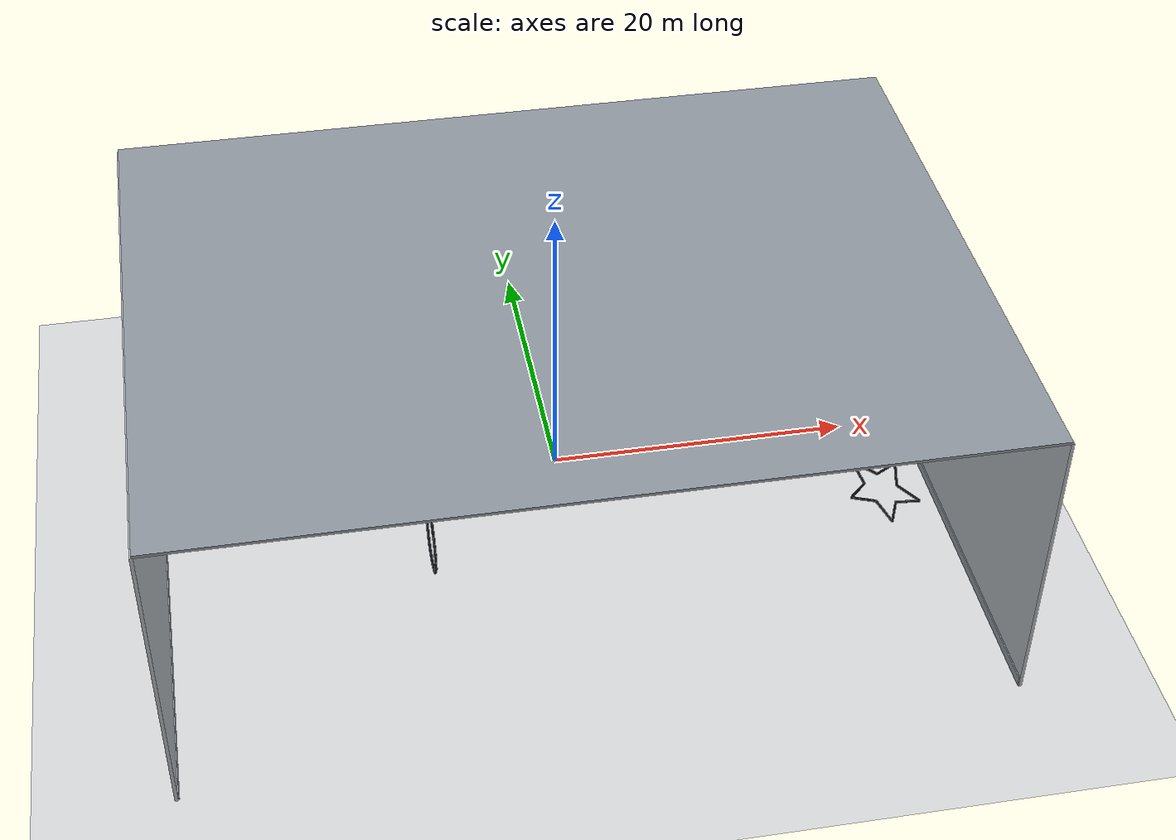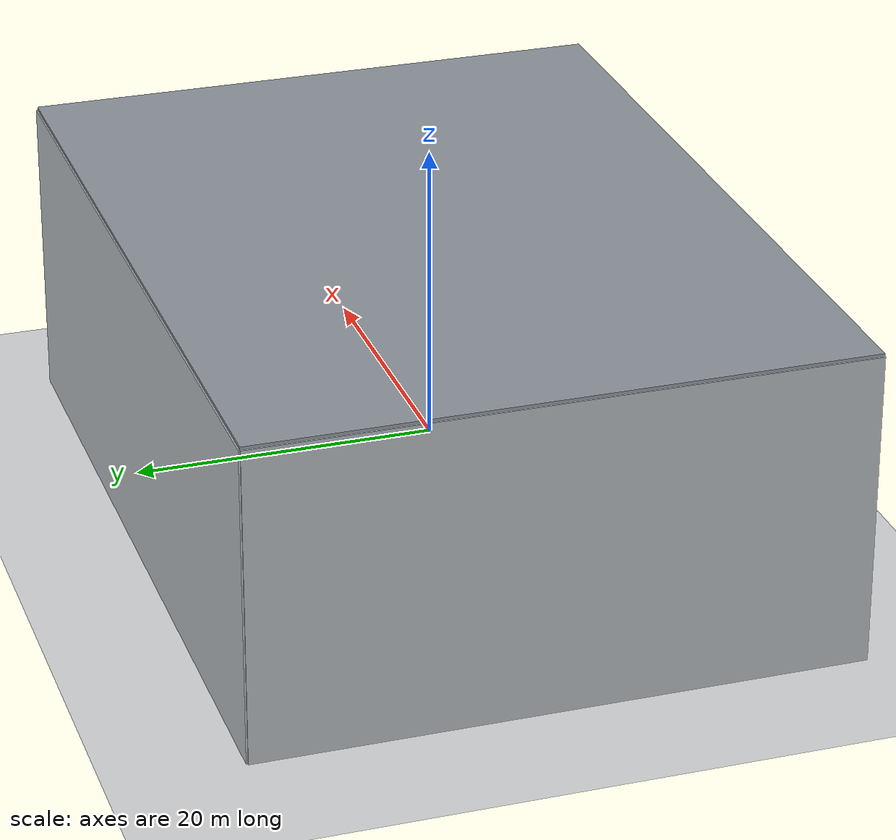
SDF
<?xml version="1.0" ?>
<sdf version="1.9"><world name="seven_unique_px4_manual">
  <physics name="px4_manual_four_millisecond" type="dart"><max_step_size>0.004</max_step_size><real_time_factor>1</real_time_factor></physics>
  <gravity>0 0 -9.8</gravity>
  <magnetic_field>6e-06 2.3e-05 -4.2e-05</magnetic_field>
  <atmosphere type="adiabatic"/>
  <spherical_coordinates>
    <surface_model>EARTH_WGS84</surface_model>
    <world_frame_orientation>ENU</world_frame_orientation>
    <latitude_deg>47.397971057728974</latitude_deg>
    <longitude_deg>8.546163739800146</longitude_deg>
    <elevation>0</elevation>
    <heading_deg>0</heading_deg>
  </spherical_coordinates>

  <scene><ambient>0.64 0.66 0.68 1</ambient><background>0.73 0.75 0.77 1</background><shadows>false</shadows><grid>false</grid></scene>

  <model name="ground"><static>true</static><pose>0 0 -6 0 0 0</pose><link name="ground_link">
    <collision name="ground_collision"><geometry><plane><normal>0 0 1</normal><size>100 100</size></plane></geometry></collision>
    <visual name="ground_visual"><geometry><plane><normal>0 0 1</normal><size>100 100</size></plane></geometry>
      <material><ambient>0.72 0.74 0.76 1</ambient><diffuse>0.84 0.85 0.86 1</diffuse><specular>0.08 0.08 0.08 1</specular>
        <pbr><metal><albedo_map>materials/textures/indoor_lab_floor.png</albedo_map><roughness>0.92</roughness><metalness>0.02</metalness></metal></pbr></material>
    </visual></link></model>

  <model name="lab_back_wall"><static>true</static><pose>0 20 4.5 0 0 0</pose><link name="visual_only">
      <visual name="visual"><geometry><box><size>54 0.22 21</size></box></geometry>
        <material><ambient>0.700 0.720 0.740 1.000</ambient><diffuse>0.700 0.720 0.740 1.000</diffuse><emissive>0.000 0.000 0.000 1.000</emissive></material>
      </visual></link></model>
<model name="lab_left_wall"><static>true</static><pose>-27 0 4.5 0 0 0</pose><link name="visual_only">
      <visual name="visual"><geometry><box><size>0.22 40 21</size></box></geometry>
        <material><ambient>0.700 0.720 0.740 1.000</ambient><diffuse>0.700 0.720 0.740 1.000</diffuse><emissive>0.000 0.000 0.000 1.000</emissive></material>
      </visual></link></model>
<model name="lab_right_wall"><static>true</static><pose>27 0 4.5 0 0 0</pose><link name="visual_only">
      <visual name="visual"><geometry><box><size>0.22 40 21</size></box></geometry>
        <material><ambient>0.700 0.720 0.740 1.000</ambient><diffuse>0.700 0.720 0.740 1.000</diffuse><emissive>0.000 0.000 0.000 1.000</emissive></material>
      </visual></link></model>
<model name="lab_ceiling"><static>true</static><pose>0 0 15.1 0 0 0</pose><link name="visual_only">
      <visual name="visual"><geometry><box><size>54 40 0.2</size></box></geometry>
        <material><ambient>0.560 0.590 0.620 1.000</ambient><diffuse>0.560 0.590 0.620 1.000</diffuse><emissive>0.000 0.000 0.000 1.000</emissive></material>
      </visual></link></model>
<model name="lab_back_skirt"><static>true</static><pose>0 19.84 -5.55 0 0 0</pose><link name="visual_only">
      <visual name="visual"><geometry><box><size>54 0.08 0.7</size></box></geometry>
        <material><ambient>0.560 0.590 0.620 1.000</ambient><diffuse>0.560 0.590 0.620 1.000</diffuse><emissive>0.000 0.000 0.000 1.000</emissive></material>
      </visual></link></model>
<model name="lab_left_skirt"><static>true</static><pose>-26.84 0 -5.55 0 0 0</pose><link name="visual_only">
      <visual name="visual"><geometry><box><size>0.08 40 0.7</size></box></geometry>
        <material><ambient>0.560 0.590 0.620 1.000</ambient><diffuse>0.560 0.590 0.620 1.000</diffuse><emissive>0.000 0.000 0.000 1.000</emissive></material>
      </visual></link></model>
<model name="lab_right_skirt"><static>true</static><pose>26.84 0 -5.55 0 0 0</pose><link name="visual_only">
      <visual name="visual"><geometry><box><size>0.08 40 0.7</size></box></geometry>
        <material><ambient>0.560 0.590 0.620 1.000</ambient><diffuse>0.560 0.590 0.620 1.000</diffuse><emissive>0.000 0.000 0.000 1.000</emissive></material>
      </visual></link></model>
<model name="ceiling_panel_0_0"><static>true</static><pose>-18 -10 14.96 0 0 0</pose><link name="visual_only">
      <visual name="visual"><geometry><box><size>5.6 1 0.025</size></box></geometry>
        <material><ambient>0.980 0.980 0.960 1.000</ambient><diffuse>0.980 0.980 0.960 1.000</diffuse><emissive>0.980 0.980 0.960 1.000</emissive></material>
      </visual></link></model>
<model name="ceiling_panel_0_1"><static>true</static><pose>-6 -10 14.96 0 0 0</pose><link name="visual_only">
      <visual name="visual"><geometry><box><size>5.6 1 0.025</size></box></geometry>
        <material><ambient>0.980 0.980 0.960 1.000</ambient><diffuse>0.980 0.980 0.960 1.000</diffuse><emissive>0.980 0.980 0.960 1.000</emissive></material>
      </visual></link></model>
<model name="ceiling_panel_0_2"><static>true</static><pose>6 -10 14.96 0 0 0</pose><link name="visual_only">
      <visual name="visual"><geometry><box><size>5.6 1 0.025</size></box></geometry>
        <material><ambient>0.980 0.980 0.960 1.000</ambient><diffuse>0.980 0.980 0.960 1.000</diffuse><emissive>0.980 0.980 0.960 1.000</emissive></material>
      </visual></link></model>
<model name="ceiling_panel_0_3"><static>true</static><pose>18 -10 14.96 0 0 0</pose><link name="visual_only">
      <visual name="visual"><geometry><box><size>5.6 1 0.025</size></box></geometry>
        <material><ambient>0.980 0.980 0.960 1.000</ambient><diffuse>0.980 0.980 0.960 1.000</diffuse><emissive>0.980 0.980 0.960 1.000</emissive></material>
      </visual></link></model>
<model name="ceiling_panel_1_0"><static>true</static><pose>-18 0 14.96 0 0 0</pose><link name="visual_only">
      <visual name="visual"><geometry><box><size>5.6 1 0.025</size></box></geometry>
        <material><ambient>0.980 0.980 0.960 1.000</ambient><diffuse>0.980 0.980 0.960 1.000</diffuse><emissive>0.980 0.980 0.960 1.000</emissive></material>
      </visual></link></model>
<model name="ceiling_panel_1_1"><static>true</static><pose>-6 0 14.96 0 0 0</pose><link name="visual_only">
      <visual name="visual"><geometry><box><size>5.6 1 0.025</size></box></geometry>
        <material><ambient>0.980 0.980 0.960 1.000</ambient><diffuse>0.980 0.980 0.960 1.000</diffuse><emissive>0.980 0.980 0.960 1.000</emissive></material>
      </visual></link></model>
<model name="ceiling_panel_1_2"><static>true</static><pose>6 0 14.96 0 0 0</pose><link name="visual_only">
      <visual name="visual"><geometry><box><size>5.6 1 0.025</size></box></geometry>
        <material><ambient>0.980 0.980 0.960 1.000</ambient><diffuse>0.980 0.980 0.960 1.000</diffuse><emissive>0.980 0.980 0.960 1.000</emissive></material>
      </visual></link></model>
<model name="ceiling_panel_1_3"><static>true</static><pose>18 0 14.96 0 0 0</pose><link name="visual_only">
      <visual name="visual"><geometry><box><size>5.6 1 0.025</size></box></geometry>
        <material><ambient>0.980 0.980 0.960 1.000</ambient><diffuse>0.980 0.980 0.960 1.000</diffuse><emissive>0.980 0.980 0.960 1.000</emissive></material>
      </visual></link></model>
<model name="ceiling_panel_2_0"><static>true</static><pose>-18 10 14.96 0 0 0</pose><link name="visual_only">
      <visual name="visual"><geometry><box><size>5.6 1 0.025</size></box></geometry>
        <material><ambient>0.980 0.980 0.960 1.000</ambient><diffuse>0.980 0.980 0.960 1.000</diffuse><emissive>0.980 0.980 0.960 1.000</emissive></material>
      </visual></link></model>
<model name="ceiling_panel_2_1"><static>true</static><pose>-6 10 14.96 0 0 0</pose><link name="visual_only">
      <visual name="visual"><geometry><box><size>5.6 1 0.025</size></box></geometry>
        <material><ambient>0.980 0.980 0.960 1.000</ambient><diffuse>0.980 0.980 0.960 1.000</diffuse><emissive>0.980 0.980 0.960 1.000</emissive></material>
      </visual></link></model>
<model name="ceiling_panel_2_2"><static>true</static><pose>6 10 14.96 0 0 0</pose><link name="visual_only">
      <visual name="visual"><geometry><box><size>5.6 1 0.025</size></box></geometry>
        <material><ambient>0.980 0.980 0.960 1.000</ambient><diffuse>0.980 0.980 0.960 1.000</diffuse><emissive>0.980 0.980 0.960 1.000</emissive></material>
      </visual></link></model>
<model name="ceiling_panel_2_3"><static>true</static><pose>18 10 14.96 0 0 0</pose><link name="visual_only">
      <visual name="visual"><geometry><box><size>5.6 1 0.025</size></box></geometry>
        <material><ambient>0.980 0.980 0.960 1.000</ambient><diffuse>0.980 0.980 0.960 1.000</diffuse><emissive>0.980 0.980 0.960 1.000</emissive></material>
      </visual></link></model>
  <model name="gate_01_W1_L">
      <pose>-2.42 -3.52 6.48 0 -1.57079632679 0</pose>
      <self_collide>false</self_collide>
      <link name="base">
        <gravity>false</gravity>
        <inertial><mass>1</mass><inertia><ixx>1</ixx><iyy>1</iyy><izz>1</izz></inertia></inertial>
      </link>
      <link name="frame"><pose relative_to="base">0 0 0 0 0 0.4</pose><gravity>false</gravity>
        <inertial><mass>8</mass><inertia><ixx>40</ixx><iyy>40</iyy><izz>40</izz></inertia></inertial>
        <collision name="frame_collision"><geometry><mesh><uri>meshes/gate_01_L_sleeve.stl</uri></mesh></geometry>
          <surface><contact><collide_bitmask>0xffff</collide_bitmask></contact>
          <friction><ode><mu>0.8</mu><mu2>0.8</mu2></ode></friction>
          <bounce><restitution_coefficient>.16</restitution_coefficient><threshold>.05</threshold></bounce></surface>
        </collision>
        <visual name="foam_sleeve"><geometry><mesh><uri>meshes/gate_01_L_sleeve.stl</uri></mesh></geometry>
          <material><ambient>0.025 0.030 0.040 1</ambient><diffuse>0.055 0.065 0.085 1</diffuse>
          <specular>0.14 0.14 0.16 1</specular></material>
        </visual>
        <visual name="led_inner_edge"><geometry><mesh><uri>meshes/gate_01_L_visual_core.stl</uri></mesh></geometry>
          <material><ambient>0.780 0.830 0.900 1.000</ambient><diffuse>0.780 0.830 0.900 1.000</diffuse>
          <specular>0.75 0.75 0.75 1</specular><emissive>0.780 0.830 0.900 1.000</emissive></material>
        </visual>
      </link>
      <joint name="world_fixed" type="fixed"><parent>world</parent><child>base</child></joint>
      <joint name="spin" type="revolute"><parent>base</parent><child>frame</child>
        <axis><xyz>0 0 1</xyz><limit><lower>-1e16</lower><upper>1e16</upper>
        <velocity>100</velocity><effort>1e9</effort></limit><dynamics><damping>0</damping></dynamics></axis>
      </joint>
      <plugin filename="gz-sim-joint-controller-system" name="gz::sim::systems::JointController">
        <joint_name>spin</joint_name><initial_velocity>5</initial_velocity>
      </plugin>
      <plugin filename="gz-sim-joint-state-publisher-system" name="gz::sim::systems::JointStatePublisher">
        <joint_name>spin</joint_name><topic>/seven_unique/gate_01/joint_state</topic>
      </plugin>
    </model>
<model name="gate_02_W2_U">
      <pose>20.24 14.52 1.8 0 -1.57079632679 -0.349065850399</pose>
      <self_collide>false</self_collide>
      <link name="base">
        <gravity>false</gravity>
        <inertial><mass>1</mass><inertia><ixx>1</ixx><iyy>1</iyy><izz>1</izz></inertia></inertial>
      </link>
      <link name="frame"><pose relative_to="base">0 0 0 0 0 -0.7</pose><gravity>false</gravity>
        <inertial><mass>8</mass><inertia><ixx>40</ixx><iyy>40</iyy><izz>40</izz></inertia></inertial>
        <collision name="frame_collision"><geometry><mesh><uri>meshes/gate_02_U_sleeve.stl</uri></mesh></geometry>
          <surface><contact><collide_bitmask>0xffff</collide_bitmask></contact>
          <friction><ode><mu>0.8</mu><mu2>0.8</mu2></ode></friction>
          <bounce><restitution_coefficient>.16</restitution_coefficient><threshold>.05</threshold></bounce></surface>
        </collision>
        <visual name="foam_sleeve"><geometry><mesh><uri>meshes/gate_02_U_sleeve.stl</uri></mesh></geometry>
          <material><ambient>0.025 0.030 0.040 1</ambient><diffuse>0.055 0.065 0.085 1</diffuse>
          <specular>0.14 0.14 0.16 1</specular></material>
        </visual>
        <visual name="led_inner_edge"><geometry><mesh><uri>meshes/gate_02_U_visual_core.stl</uri></mesh></geometry>
          <material><ambient>0.780 0.830 0.900 1.000</ambient><diffuse>0.780 0.830 0.900 1.000</diffuse>
          <specular>0.75 0.75 0.75 1</specular><emissive>0.780 0.830 0.900 1.000</emissive></material>
        </visual>
      </link>
      <joint name="world_fixed" type="fixed"><parent>world</parent><child>base</child></joint>
      <joint name="spin" type="revolute"><parent>base</parent><child>frame</child>
        <axis><xyz>0 0 1</xyz><limit><lower>-1e16</lower><upper>1e16</upper>
        <velocity>100</velocity><effort>1e9</effort></limit><dynamics><damping>0</damping></dynamics></axis>
      </joint>
      <plugin filename="gz-sim-joint-controller-system" name="gz::sim::systems::JointController">
        <joint_name>spin</joint_name><initial_velocity>-4</initial_velocity>
      </plugin>
      <plugin filename="gz-sim-joint-state-publisher-system" name="gz::sim::systems::JointStatePublisher">
        <joint_name>spin</joint_name><topic>/seven_unique/gate_02/joint_state</topic>
      </plugin>
    </model>
<model name="gate_03_W3_star">
      <pose>20.24 -8.8 2.16 0 -1.57079632679 -2.26892802759</pose>
      <self_collide>false</self_collide>
      <link name="base">
        <gravity>false</gravity>
        <inertial><mass>1</mass><inertia><ixx>1</ixx><iyy>1</iyy><izz>1</izz></inertia></inertial>
      </link>
      <link name="frame"><pose relative_to="base">0 0 0 0 0 0.55</pose><gravity>false</gravity>
        <inertial><mass>8</mass><inertia><ixx>40</ixx><iyy>40</iyy><izz>40</izz></inertia></inertial>
        <collision name="frame_collision"><geometry><mesh><uri>meshes/gate_03_star_sleeve.stl</uri></mesh></geometry>
          <surface><contact><collide_bitmask>0xffff</collide_bitmask></contact>
          <friction><ode><mu>0.8</mu><mu2>0.8</mu2></ode></friction>
          <bounce><restitution_coefficient>.16</restitution_coefficient><threshold>.05</threshold></bounce></surface>
        </collision>
        <visual name="foam_sleeve"><geometry><mesh><uri>meshes/gate_03_star_sleeve.stl</uri></mesh></geometry>
          <material><ambient>0.025 0.030 0.040 1</ambient><diffuse>0.055 0.065 0.085 1</diffuse>
          <specular>0.14 0.14 0.16 1</specular></material>
        </visual>
        <visual name="led_inner_edge"><geometry><mesh><uri>meshes/gate_03_star_visual_core.stl</uri></mesh></geometry>
          <material><ambient>0.780 0.830 0.900 1.000</ambient><diffuse>0.780 0.830 0.900 1.000</diffuse>
          <specular>0.75 0.75 0.75 1</specular><emissive>0.780 0.830 0.900 1.000</emissive></material>
        </visual>
      </link>
      <joint name="world_fixed" type="fixed"><parent>world</parent><child>base</child></joint>
      <joint name="spin" type="revolute"><parent>base</parent><child>frame</child>
        <axis><xyz>0 0 1</xyz><limit><lower>-1e16</lower><upper>1e16</upper>
        <velocity>100</velocity><effort>1e9</effort></limit><dynamics><damping>0</damping></dynamics></axis>
      </joint>
      <plugin filename="gz-sim-joint-controller-system" name="gz::sim::systems::JointController">
        <joint_name>spin</joint_name><initial_velocity>4.5</initial_velocity>
      </plugin>
      <plugin filename="gz-sim-joint-state-publisher-system" name="gz::sim::systems::JointStatePublisher">
        <joint_name>spin</joint_name><topic>/seven_unique/gate_03/joint_state</topic>
      </plugin>
    </model>
<model name="gate_04_W4_limacon">
      <pose>-9.9 -13.2 6.3 0 -1.57079632679 3.14159265359</pose>
      <self_collide>false</self_collide>
      <link name="base">
        <gravity>false</gravity>
        <inertial><mass>1</mass><inertia><ixx>1</ixx><iyy>1</iyy><izz>1</izz></inertia></inertial>
      </link>
      <link name="frame"><pose relative_to="base">0 0 0 0 0 -0.35</pose><gravity>false</gravity>
        <inertial><mass>8</mass><inertia><ixx>40</ixx><iyy>40</iyy><izz>40</izz></inertia></inertial>
        <collision name="frame_collision"><geometry><mesh><uri>meshes/gate_04_limacon_sleeve.stl</uri></mesh></geometry>
          <surface><contact><collide_bitmask>0xffff</collide_bitmask></contact>
          <friction><ode><mu>0.8</mu><mu2>0.8</mu2></ode></friction>
          <bounce><restitution_coefficient>.16</restitution_coefficient><threshold>.05</threshold></bounce></surface>
        </collision>
        <visual name="foam_sleeve"><geometry><mesh><uri>meshes/gate_04_limacon_sleeve.stl</uri></mesh></geometry>
          <material><ambient>0.025 0.030 0.040 1</ambient><diffuse>0.055 0.065 0.085 1</diffuse>
          <specular>0.14 0.14 0.16 1</specular></material>
        </visual>
        <visual name="led_inner_edge"><geometry><mesh><uri>meshes/gate_04_limacon_visual_core.stl</uri></mesh></geometry>
          <material><ambient>0.780 0.830 0.900 1.000</ambient><diffuse>0.780 0.830 0.900 1.000</diffuse>
          <specular>0.75 0.75 0.75 1</specular><emissive>0.780 0.830 0.900 1.000</emissive></material>
        </visual>
      </link>
      <joint name="world_fixed" type="fixed"><parent>world</parent><child>base</child></joint>
      <joint name="spin" type="revolute"><parent>base</parent><child>frame</child>
        <axis><xyz>0 0 1</xyz><limit><lower>-1e16</lower><upper>1e16</upper>
        <velocity>100</velocity><effort>1e9</effort></limit><dynamics><damping>0</damping></dynamics></axis>
      </joint>
      <plugin filename="gz-sim-joint-controller-system" name="gz::sim::systems::JointController">
        <joint_name>spin</joint_name><initial_velocity>-5</initial_velocity>
      </plugin>
      <plugin filename="gz-sim-joint-state-publisher-system" name="gz::sim::systems::JointStatePublisher">
        <joint_name>spin</joint_name><topic>/seven_unique/gate_04/joint_state</topic>
      </plugin>
    </model>
<model name="gate_05_W5_wavy">
      <pose>10.45 -1.98 2.16 0 -1.57079632679 1.2217304764</pose>
      <self_collide>false</self_collide>
      <link name="base">
        <gravity>false</gravity>
        <inertial><mass>1</mass><inertia><ixx>1</ixx><iyy>1</iyy><izz>1</izz></inertia></inertial>
      </link>
      <link name="frame"><pose relative_to="base">0 0 0 0 0 0.9</pose><gravity>false</gravity>
        <inertial><mass>8</mass><inertia><ixx>40</ixx><iyy>40</iyy><izz>40</izz></inertia></inertial>
        <collision name="frame_collision"><geometry><mesh><uri>meshes/gate_05_wavy_sleeve.stl</uri></mesh></geometry>
          <surface><contact><collide_bitmask>0xffff</collide_bitmask></contact>
          <friction><ode><mu>0.8</mu><mu2>0.8</mu2></ode></friction>
          <bounce><restitution_coefficient>.16</restitution_coefficient><threshold>.05</threshold></bounce></surface>
        </collision>
        <visual name="foam_sleeve"><geometry><mesh><uri>meshes/gate_05_wavy_sleeve.stl</uri></mesh></geometry>
          <material><ambient>0.025 0.030 0.040 1</ambient><diffuse>0.055 0.065 0.085 1</diffuse>
          <specular>0.14 0.14 0.16 1</specular></material>
        </visual>
        <visual name="led_inner_edge"><geometry><mesh><uri>meshes/gate_05_wavy_visual_core.stl</uri></mesh></geometry>
          <material><ambient>0.780 0.830 0.900 1.000</ambient><diffuse>0.780 0.830 0.900 1.000</diffuse>
          <specular>0.75 0.75 0.75 1</specular><emissive>0.780 0.830 0.900 1.000</emissive></material>
        </visual>
      </link>
      <joint name="world_fixed" type="fixed"><parent>world</parent><child>base</child></joint>
      <joint name="spin" type="revolute"><parent>base</parent><child>frame</child>
        <axis><xyz>0 0 1</xyz><limit><lower>-1e16</lower><upper>1e16</upper>
        <velocity>100</velocity><effort>1e9</effort></limit><dynamics><damping>0</damping></dynamics></axis>
      </joint>
      <plugin filename="gz-sim-joint-controller-system" name="gz::sim::systems::JointController">
        <joint_name>spin</joint_name><initial_velocity>5.5</initial_velocity>
      </plugin>
      <plugin filename="gz-sim-joint-state-publisher-system" name="gz::sim::systems::JointStatePublisher">
        <joint_name>spin</joint_name><topic>/seven_unique/gate_05/joint_state</topic>
      </plugin>
    </model>
<model name="gate_06_W6_line_bezier">
      <pose>-6.16 14.96 2.16 0 -1.57079632679 3.49065850399</pose>
      <self_collide>false</self_collide>
      <link name="base">
        <gravity>false</gravity>
        <inertial><mass>1</mass><inertia><ixx>1</ixx><iyy>1</iyy><izz>1</izz></inertia></inertial>
      </link>
      <link name="frame"><pose relative_to="base">0 0 0 0 0 -1.1</pose><gravity>false</gravity>
        <inertial><mass>8</mass><inertia><ixx>40</ixx><iyy>40</iyy><izz>40</izz></inertia></inertial>
        <collision name="frame_collision"><geometry><mesh><uri>meshes/gate_06_line_bezier_sleeve.stl</uri></mesh></geometry>
          <surface><contact><collide_bitmask>0xffff</collide_bitmask></contact>
          <friction><ode><mu>0.8</mu><mu2>0.8</mu2></ode></friction>
          <bounce><restitution_coefficient>.16</restitution_coefficient><threshold>.05</threshold></bounce></surface>
        </collision>
        <visual name="foam_sleeve"><geometry><mesh><uri>meshes/gate_06_line_bezier_sleeve.stl</uri></mesh></geometry>
          <material><ambient>0.025 0.030 0.040 1</ambient><diffuse>0.055 0.065 0.085 1</diffuse>
          <specular>0.14 0.14 0.16 1</specular></material>
        </visual>
        <visual name="led_inner_edge"><geometry><mesh><uri>meshes/gate_06_line_bezier_visual_core.stl</uri></mesh></geometry>
          <material><ambient>0.780 0.830 0.900 1.000</ambient><diffuse>0.780 0.830 0.900 1.000</diffuse>
          <specular>0.75 0.75 0.75 1</specular><emissive>0.780 0.830 0.900 1.000</emissive></material>
        </visual>
      </link>
      <joint name="world_fixed" type="fixed"><parent>world</parent><child>base</child></joint>
      <joint name="spin" type="revolute"><parent>base</parent><child>frame</child>
        <axis><xyz>0 0 1</xyz><limit><lower>-1e16</lower><upper>1e16</upper>
        <velocity>100</velocity><effort>1e9</effort></limit><dynamics><damping>0</damping></dynamics></axis>
      </joint>
      <plugin filename="gz-sim-joint-controller-system" name="gz::sim::systems::JointController">
        <joint_name>spin</joint_name><initial_velocity>-15</initial_velocity>
      </plugin>
      <plugin filename="gz-sim-joint-state-publisher-system" name="gz::sim::systems::JointStatePublisher">
        <joint_name>spin</joint_name><topic>/seven_unique/gate_06/joint_state</topic>
      </plugin>
    </model>
<model name="gate_07_W7_balanced_U">
      <pose>2 8 5.5 0 -1.57079632679 2.53072741539</pose>
      <self_collide>false</self_collide>
      <link name="base">
        <gravity>false</gravity>
        <inertial><mass>1</mass><inertia><ixx>1</ixx><iyy>1</iyy><izz>1</izz></inertia></inertial>
      </link>
      <link name="frame"><pose relative_to="base">0 0 0 0 0 1.25</pose><gravity>false</gravity>
        <inertial><mass>8</mass><inertia><ixx>40</ixx><iyy>40</iyy><izz>40</izz></inertia></inertial>
        <collision name="frame_collision"><geometry><mesh><uri>meshes/gate_07_balanced_U_sleeve.stl</uri></mesh></geometry>
          <surface><contact><collide_bitmask>0xffff</collide_bitmask></contact>
          <friction><ode><mu>0.8</mu><mu2>0.8</mu2></ode></friction>
          <bounce><restitution_coefficient>.16</restitution_coefficient><threshold>.05</threshold></bounce></surface>
        </collision>
        <visual name="foam_sleeve"><geometry><mesh><uri>meshes/gate_07_balanced_U_sleeve.stl</uri></mesh></geometry>
          <material><ambient>0.025 0.030 0.040 1</ambient><diffuse>0.055 0.065 0.085 1</diffuse>
          <specular>0.14 0.14 0.16 1</specular></material>
        </visual>
        <visual name="led_inner_edge"><geometry><mesh><uri>meshes/gate_07_balanced_U_visual_core.stl</uri></mesh></geometry>
          <material><ambient>0.780 0.830 0.900 1.000</ambient><diffuse>0.780 0.830 0.900 1.000</diffuse>
          <specular>0.75 0.75 0.75 1</specular><emissive>0.780 0.830 0.900 1.000</emissive></material>
        </visual>
      </link>
      <joint name="world_fixed" type="fixed"><parent>world</parent><child>base</child></joint>
      <joint name="spin" type="revolute"><parent>base</parent><child>frame</child>
        <axis><xyz>0 0 1</xyz><limit><lower>-1e16</lower><upper>1e16</upper>
        <velocity>100</velocity><effort>1e9</effort></limit><dynamics><damping>0</damping></dynamics></axis>
      </joint>
      <plugin filename="gz-sim-joint-controller-system" name="gz::sim::systems::JointController">
        <joint_name>spin</joint_name><initial_velocity>18</initial_velocity>
      </plugin>
      <plugin filename="gz-sim-joint-state-publisher-system" name="gz::sim::systems::JointStatePublisher">
        <joint_name>spin</joint_name><topic>/seven_unique/gate_07/joint_state</topic>
      </plugin>
    </model>
</world></sdf>
